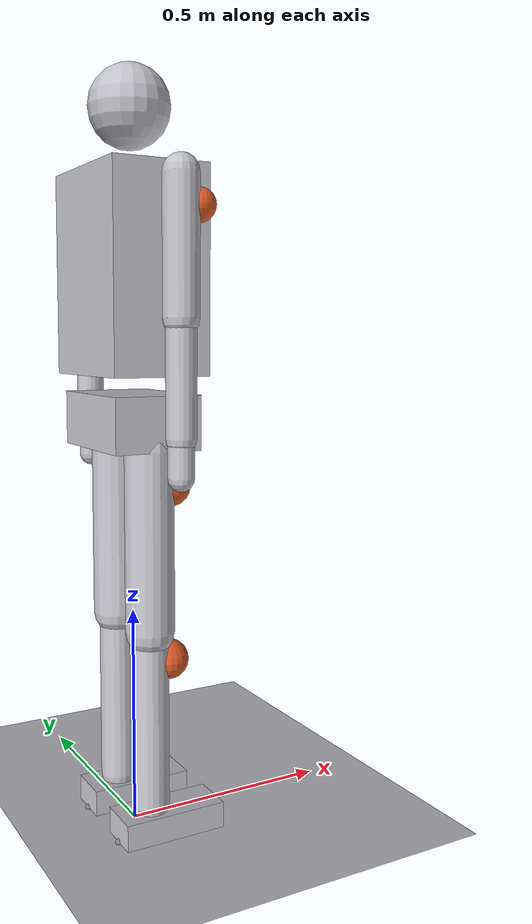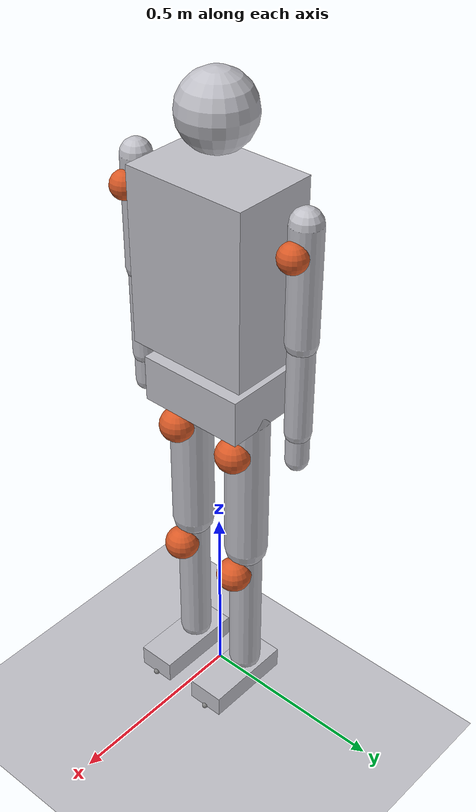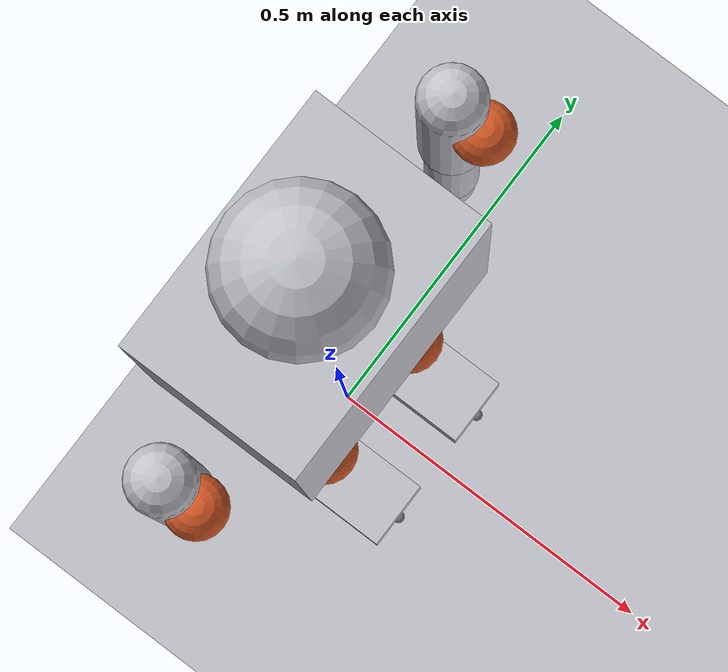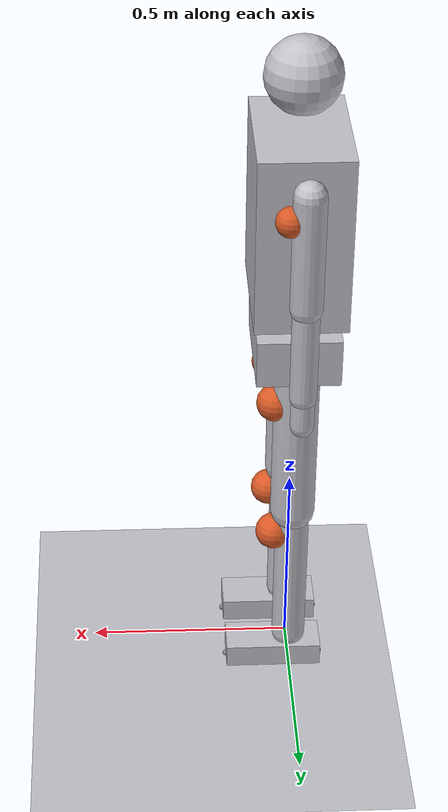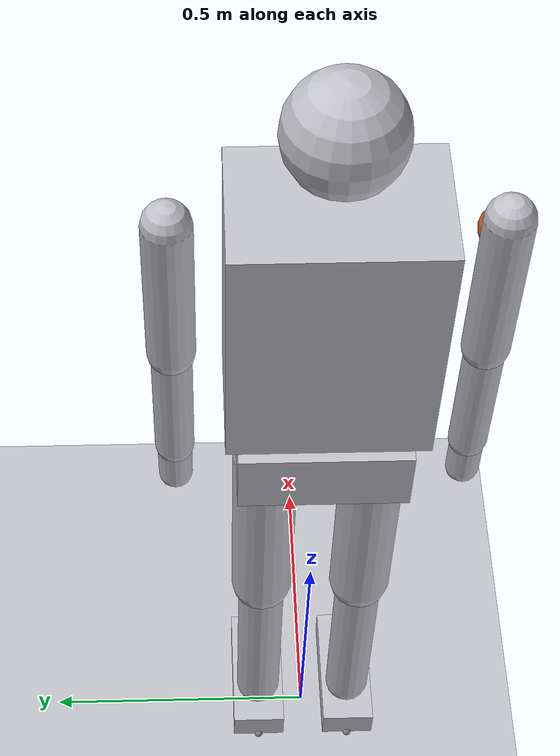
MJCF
<mujoco model="humanoid27_tensegrity_m0">
  <compiler angle="radian" autolimits="true"/>
  <option timestep="0.004" integrator="implicitfast" solver="Newton" iterations="100"/>

  <default>
    <joint damping="2.0" armature="0.03" limited="true"/>
    <geom friction="1.0 0.005 0.0001" condim="3" contype="1" conaffinity="0"
          rgba="0.75 0.75 0.78 1"/>
    <motor ctrllimited="true"/>
    <default class="motorpack">
      <geom type="sphere" size="0.045" contype="0" conaffinity="0" rgba="0.85 0.35 0.15 1"/>
    </default>
  </default>

  <asset>
    <texture name="grid" type="2d" builtin="checker" rgb1="0.2 0.25 0.3" rgb2="0.3 0.35 0.4"
             width="512" height="512"/>
    <material name="grid" texture="grid" texrepeat="8 8" reflectance="0.1"/>
  </asset>

  <worldbody>
    <light pos="0 0 3" dir="0 0 -1" directional="true"/>
    <geom name="floor" type="plane" size="20 20 0.1" material="grid" contype="1" conaffinity="1"/>

    <body name="pelvis" pos="0 0 0.936">
      <freejoint name="root"/>
      <!-- 0.8 structure + 4.8 hip motors + 2.5 battery -->
      <geom name="pelvis_geom" type="box" size="0.10 0.14 0.06" mass="8.1"/>
      <site name="pelvis_site" pos="0 0 0" size="0.01"/>

      <!-- ==================== LEFT LEG (+y) ==================== -->
      <body name="thigh_l" pos="0 0.09 -0.06">
        <joint name="hip_yaw_l"   axis="0 0 1" range="-0.8 0.8"/>
        <joint name="hip_roll_l"  axis="1 0 0" range="-0.4 0.8"/>
        <joint name="hip_pitch_l" axis="0 1 0" range="-2.0 0.7"/>
        <geom name="thigh_l_geom" type="capsule" fromto="0 0 0 0 0 -0.40" size="0.055" mass="0.35"/>
        <geom name="knee_motor_l" class="motorpack" pos="0.05 0 -0.08" mass="0.7"/>
        <body name="shank_l" pos="0 0 -0.40">
          <joint name="knee_l" axis="0 1 0" range="-0.05 2.4"/>
          <geom name="shank_l_geom" type="capsule" fromto="0 0 0 0 0 -0.40" size="0.042" mass="0.30"/>
          <geom name="ankle_motors_l" class="motorpack" pos="0.045 0 -0.07" mass="1.4"/>
          <body name="foot_l" pos="0 0 -0.40">
            <joint name="ankle_pitch_l" axis="0 1 0" range="-0.9 0.9"/>
            <joint name="ankle_roll_l"  axis="1 0 0" range="-0.4 0.4"/>
            <geom name="foot_l_geom" type="box" pos="0.04 0 -0.045" size="0.12 0.05 0.03" mass="0.40"/>
            <site name="foot_l_site" pos="0.04 0 -0.075" size="0.01"/>
            <site name="sp2" pos="0.16 0 -0.075" size="0.008"/>
            <site name="sp3" pos="-0.08 0 -0.075" size="0.008"/>
          </body>
        </body>
      </body>

      <!-- ==================== RIGHT LEG (-y) ==================== -->
      <body name="thigh_r" pos="0 -0.09 -0.06">
        <joint name="hip_yaw_r"   axis="0 0 1" range="-0.8 0.8"/>
        <joint name="hip_roll_r"  axis="1 0 0" range="-0.8 0.4"/>
        <joint name="hip_pitch_r" axis="0 1 0" range="-2.0 0.7"/>
        <geom name="thigh_r_geom" type="capsule" fromto="0 0 0 0 0 -0.40" size="0.055" mass="0.35"/>
        <geom name="knee_motor_r" class="motorpack" pos="0.05 0 -0.08" mass="0.7"/>
        <body name="shank_r" pos="0 0 -0.40">
          <joint name="knee_r" axis="0 1 0" range="-0.05 2.4"/>
          <geom name="shank_r_geom" type="capsule" fromto="0 0 0 0 0 -0.40" size="0.042" mass="0.30"/>
          <geom name="ankle_motors_r" class="motorpack" pos="0.045 0 -0.07" mass="1.4"/>
          <body name="foot_r" pos="0 0 -0.40">
            <joint name="ankle_pitch_r" axis="0 1 0" range="-0.9 0.9"/>
            <joint name="ankle_roll_r"  axis="1 0 0" range="-0.4 0.4"/>
            <geom name="foot_r_geom" type="box" pos="0.04 0 -0.045" size="0.12 0.05 0.03" mass="0.40"/>
            <site name="foot_r_site" pos="0.04 0 -0.075" size="0.01"/>
            <site name="sp0" pos="0.16 0 -0.075" size="0.008"/>
            <site name="sp1" pos="-0.08 0 -0.075" size="0.008"/>
          </body>
        </body>
      </body>

      <!-- ==================== TORSO ==================== -->
      <body name="torso" pos="0 0 0.10">
        <joint name="waist_yaw"   axis="0 0 1" range="-0.7 0.7"/>
        <joint name="waist_pitch" axis="0 1 0" range="-0.5 0.6"/>
        <joint name="waist_roll"  axis="1 0 0" range="-0.4 0.4"/>
        <!-- 1.5 structure + 2.4 spine motors + 3.0 shoulder motors + 0.4 neck motors + 0.5 compute -->
        <geom name="torso_geom" type="box" pos="0 0 0.22" size="0.11 0.16 0.22" mass="7.8"/>
        <site name="imu" pos="0 0 0.30" size="0.01"/>

        <body name="head" pos="0 0 0.50">
          <joint name="neck_pitch" axis="0 1 0" range="-0.6 0.6"/>
          <joint name="neck_yaw"   axis="0 0 1" range="-1.0 1.0"/>
          <geom name="head_geom" type="sphere" pos="0 0 0.07" size="0.09" mass="0.60"/>
          <site name="head_site" pos="0 0 0.07" size="0.01"/>
        </body>

        <!-- ==================== LEFT ARM (+y) ==================== -->
        <body name="upper_arm_l" pos="0 0.24 0.40">
          <joint name="shoulder_pitch_l" axis="0 1 0" range="-3.0 1.0"/>
          <joint name="shoulder_roll_l"  axis="1 0 0" range="-0.5 1.8"/>
          <joint name="shoulder_yaw_l"   axis="0 0 1" range="-1.5 1.5"/>
          <geom name="uarm_l_geom" type="capsule" fromto="0 0 0 0 0 -0.28" size="0.038" mass="0.20"/>
          <geom name="arm_motors_l" class="motorpack" pos="0.04 0 -0.06" size="0.035" mass="0.70"/>
          <body name="forearm_l" pos="0 0 -0.28">
            <joint name="elbow_l" axis="0 1 0" range="-2.4 0.05"/>
            <geom name="farm_l_geom" type="capsule" fromto="0 0 0 0 0 -0.24" size="0.032" mass="0.18"/>
            <body name="hand_l" pos="0 0 -0.24">
              <joint name="wrist_l" axis="0 0 1" range="-1.4 1.4"/>
              <geom name="hand_l_geom" type="capsule" fromto="0 0 0 0 0 -0.08" size="0.028" mass="0.07"/>
              <site name="ee_l" pos="0 0 -0.08" size="0.01"/>
            </body>
          </body>
        </body>

        <!-- ==================== RIGHT ARM (-y) ==================== -->
        <body name="upper_arm_r" pos="0 -0.24 0.40">
          <joint name="shoulder_pitch_r" axis="0 1 0" range="-3.0 1.0"/>
          <joint name="shoulder_roll_r"  axis="1 0 0" range="-1.8 0.5"/>
          <joint name="shoulder_yaw_r"   axis="0 0 1" range="-1.5 1.5"/>
          <geom name="uarm_r_geom" type="capsule" fromto="0 0 0 0 0 -0.28" size="0.038" mass="0.20"/>
          <geom name="arm_motors_r" class="motorpack" pos="0.04 0 -0.06" size="0.035" mass="0.70"/>
          <body name="forearm_r" pos="0 0 -0.28">
            <joint name="elbow_r" axis="0 1 0" range="-2.4 0.05"/>
            <geom name="farm_r_geom" type="capsule" fromto="0 0 0 0 0 -0.24" size="0.032" mass="0.18"/>
            <body name="hand_r" pos="0 0 -0.24">
              <joint name="wrist_r" axis="0 0 1" range="-1.4 1.4"/>
              <geom name="hand_r_geom" type="capsule" fromto="0 0 0 0 0 -0.08" size="0.028" mass="0.07"/>
              <site name="ee_r" pos="0 0 -0.08" size="0.01"/>
            </body>
          </body>
        </body>
      </body>
    </body>
  </worldbody>

  <!-- MJPC convention: ctrl normalized to [-1,1], physical torque in gear (Nm).
       MJPC's sampling noise is absolute in ctrl units and its control costs
       assume O(1) controls. -->
  <actuator>
    <motor joint="hip_yaw_l"        name="hip_yaw_l"        gear="40" ctrlrange="-1 1"/>
    <motor joint="hip_roll_l"       name="hip_roll_l"       gear="60" ctrlrange="-1 1"/>
    <motor joint="hip_pitch_l"      name="hip_pitch_l"      gear="80" ctrlrange="-1 1"/>
    <motor joint="knee_l"           name="knee_l"           gear="80" ctrlrange="-1 1"/>
    <motor joint="ankle_pitch_l"    name="ankle_pitch_l"    gear="70" ctrlrange="-1 1"/>
    <motor joint="ankle_roll_l"     name="ankle_roll_l"     gear="40" ctrlrange="-1 1"/>
    <motor joint="hip_yaw_r"        name="hip_yaw_r"        gear="40" ctrlrange="-1 1"/>
    <motor joint="hip_roll_r"       name="hip_roll_r"       gear="60" ctrlrange="-1 1"/>
    <motor joint="hip_pitch_r"      name="hip_pitch_r"      gear="80" ctrlrange="-1 1"/>
    <motor joint="knee_r"           name="knee_r"           gear="80" ctrlrange="-1 1"/>
    <motor joint="ankle_pitch_r"    name="ankle_pitch_r"    gear="70" ctrlrange="-1 1"/>
    <motor joint="ankle_roll_r"     name="ankle_roll_r"     gear="40" ctrlrange="-1 1"/>
    <motor joint="waist_yaw"        name="waist_yaw"        gear="60" ctrlrange="-1 1"/>
    <motor joint="waist_pitch"      name="waist_pitch"      gear="60" ctrlrange="-1 1"/>
    <motor joint="waist_roll"       name="waist_roll"       gear="60" ctrlrange="-1 1"/>
    <motor joint="neck_pitch"       name="neck_pitch"       gear="10" ctrlrange="-1 1"/>
    <motor joint="neck_yaw"         name="neck_yaw"         gear="10" ctrlrange="-1 1"/>
    <motor joint="shoulder_pitch_l" name="shoulder_pitch_l" gear="30" ctrlrange="-1 1"/>
    <motor joint="shoulder_roll_l"  name="shoulder_roll_l"  gear="30" ctrlrange="-1 1"/>
    <motor joint="shoulder_yaw_l"   name="shoulder_yaw_l"   gear="30" ctrlrange="-1 1"/>
    <motor joint="elbow_l"          name="elbow_l"          gear="20" ctrlrange="-1 1"/>
    <motor joint="wrist_l"          name="wrist_l"          gear="10" ctrlrange="-1 1"/>
    <motor joint="shoulder_pitch_r" name="shoulder_pitch_r" gear="30" ctrlrange="-1 1"/>
    <motor joint="shoulder_roll_r"  name="shoulder_roll_r"  gear="30" ctrlrange="-1 1"/>
    <motor joint="shoulder_yaw_r"   name="shoulder_yaw_r"   gear="30" ctrlrange="-1 1"/>
    <motor joint="elbow_r"          name="elbow_r"          gear="20" ctrlrange="-1 1"/>
    <motor joint="wrist_r"          name="wrist_r"          gear="10" ctrlrange="-1 1"/>
  </actuator>

  <keyframe>
    <key name="home"
         qpos="0 0 0.936 1 0 0 0
               0 0 0 0 0 0
               0 0 0 0 0 0
               0 0 0
               0 0
               0 0 0 0 0
               0 0 0 0 0"/>
  </keyframe>
</mujoco>
